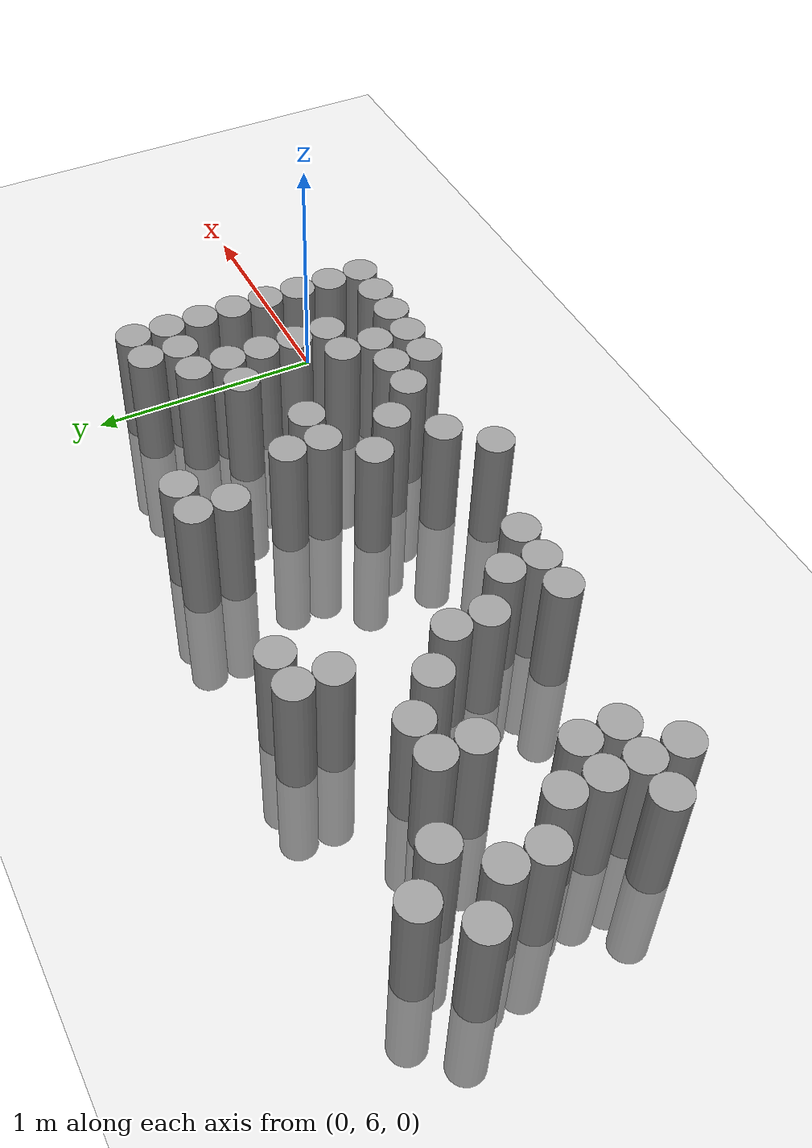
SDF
<sdf version="1.6">
 <world name="default">
  <model name="ground_plane">
   <static>1</static>
   <static>1</static>
   <link name="link">
    <collision name="collision">
     <geometry><plane><normal>0 0 1</normal><size>100 100</size></plane></geometry>
     <surface><friction><ode><mu>100</mu><mu2>50</mu2></ode></friction></surface>
    </collision>
    <visual name="visual">
     <cast_shadows>0</cast_shadows>
     <geometry><plane><normal>0 0 1</normal><size>100 100</size></plane></geometry>
     <material>
      <script><uri>file://media/materials/scripts/gazebo.material</uri><name>Gazebo/Grey</name></script>
     </material>
    </visual>
   </link>
  </model>
  <model name="unit_cylinder_166">
   <static>1</static>
   <pose>-3.075000 6.825000 0.000000 0.000000 0.000000 0.000000</pose>
   <link name="link">
    <inertial>
     <mass>1</mass>
     <inertia><ixx>0.145833</ixx><ixy>0</ixy><ixz>0</ixz><iyy>0.145833</iyy><iyz>0</iyz><izz>0.125</izz></inertia>
    </inertial>
    <collision name="collision">
     <geometry><cylinder><radius>0.075000</radius><length>1</length></cylinder></geometry>
    </collision>
    <visual name="visual">
     <geometry><cylinder><radius>0.075000</radius><length>1</length></cylinder></geometry>
     <material>
      <script><name>Gazebo/Grey</name><uri>file://media/materials/scripts/gazebo.material</uri></script>
     </material>
    </visual>
   </link>
  </model>
  <model name="unit_cylinder_168">
   <static>1</static>
   <pose>-2.925000 6.075000 0.000000 0.000000 0.000000 0.000000</pose>
   <link name="link">
    <inertial>
     <mass>1</mass>
     <inertia><ixx>0.145833</ixx><ixy>0</ixy><ixz>0</ixz><iyy>0.145833</iyy><iyz>0</iyz><izz>0.125</izz></inertia>
    </inertial>
    <collision name="collision">
     <geometry><cylinder><radius>0.075000</radius><length>1</length></cylinder></geometry>
    </collision>
    <visual name="visual">
     <geometry><cylinder><radius>0.075000</radius><length>1</length></cylinder></geometry>
     <material>
      <script><name>Gazebo/Grey</name><uri>file://media/materials/scripts/gazebo.material</uri></script>
     </material>
    </visual>
   </link>
  </model>
  <model name="unit_cylinder_169">
   <static>1</static>
   <pose>-2.925000 6.525000 0.000000 0.000000 0.000000 0.000000</pose>
   <link name="link">
    <inertial>
     <mass>1</mass>
     <inertia><ixx>0.145833</ixx><ixy>0</ixy><ixz>0</ixz><iyy>0.145833</iyy><iyz>0</iyz><izz>0.125</izz></inertia>
    </inertial>
    <collision name="collision">
     <geometry><cylinder><radius>0.075000</radius><length>1</length></cylinder></geometry>
    </collision>
    <visual name="visual">
     <geometry><cylinder><radius>0.075000</radius><length>1</length></cylinder></geometry>
     <material>
      <script><name>Gazebo/Grey</name><uri>file://media/materials/scripts/gazebo.material</uri></script>
     </material>
    </visual>
   </link>
  </model>
  <model name="unit_cylinder_170">
   <static>1</static>
   <pose>-2.925000 6.675000 0.000000 0.000000 0.000000 0.000000</pose>
   <link name="link">
    <inertial>
     <mass>1</mass>
     <inertia><ixx>0.145833</ixx><ixy>0</ixy><ixz>0</ixz><iyy>0.145833</iyy><iyz>0</iyz><izz>0.125</izz></inertia>
    </inertial>
    <collision name="collision">
     <geometry><cylinder><radius>0.075000</radius><length>1</length></cylinder></geometry>
    </collision>
    <visual name="visual">
     <geometry><cylinder><radius>0.075000</radius><length>1</length></cylinder></geometry>
     <material>
      <script><name>Gazebo/Grey</name><uri>file://media/materials/scripts/gazebo.material</uri></script>
     </material>
    </visual>
   </link>
  </model>
  <model name="unit_cylinder_171">
   <static>1</static>
   <pose>-2.925000 6.975000 0.000000 0.000000 0.000000 0.000000</pose>
   <link name="link">
    <inertial>
     <mass>1</mass>
     <inertia><ixx>0.145833</ixx><ixy>0</ixy><ixz>0</ixz><iyy>0.145833</iyy><iyz>0</iyz><izz>0.125</izz></inertia>
    </inertial>
    <collision name="collision">
     <geometry><cylinder><radius>0.075000</radius><length>1</length></cylinder></geometry>
    </collision>
    <visual name="visual">
     <geometry><cylinder><radius>0.075000</radius><length>1</length></cylinder></geometry>
     <material>
      <script><name>Gazebo/Grey</name><uri>file://media/materials/scripts/gazebo.material</uri></script>
     </material>
    </visual>
   </link>
  </model>
  <model name="unit_cylinder_172">
   <static>1</static>
   <pose>-2.775000 5.925000 0.000000 0.000000 0.000000 0.000000</pose>
   <link name="link">
    <inertial>
     <mass>1</mass>
     <inertia><ixx>0.145833</ixx><ixy>0</ixy><ixz>0</ixz><iyy>0.145833</iyy><iyz>0</iyz><izz>0.125</izz></inertia>
    </inertial>
    <collision name="collision">
     <geometry><cylinder><radius>0.075000</radius><length>1</length></cylinder></geometry>
    </collision>
    <visual name="visual">
     <geometry><cylinder><radius>0.075000</radius><length>1</length></cylinder></geometry>
     <material>
      <script><name>Gazebo/Grey</name><uri>file://media/materials/scripts/gazebo.material</uri></script>
     </material>
    </visual>
   </link>
  </model>
  <model name="unit_cylinder_173">
   <static>1</static>
   <pose>-2.775000 6.075000 0.000000 0.000000 0.000000 0.000000</pose>
   <link name="link">
    <inertial>
     <mass>1</mass>
     <inertia><ixx>0.145833</ixx><ixy>0</ixy><ixz>0</ixz><iyy>0.145833</iyy><iyz>0</iyz><izz>0.125</izz></inertia>
    </inertial>
    <collision name="collision">
     <geometry><cylinder><radius>0.075000</radius><length>1</length></cylinder></geometry>
    </collision>
    <visual name="visual">
     <geometry><cylinder><radius>0.075000</radius><length>1</length></cylinder></geometry>
     <material>
      <script><name>Gazebo/Grey</name><uri>file://media/materials/scripts/gazebo.material</uri></script>
     </material>
    </visual>
   </link>
  </model>
  <model name="unit_cylinder_174">
   <static>1</static>
   <pose>-2.775000 6.225000 0.000000 0.000000 0.000000 0.000000</pose>
   <link name="link">
    <inertial>
     <mass>1</mass>
     <inertia><ixx>0.145833</ixx><ixy>0</ixy><ixz>0</ixz><iyy>0.145833</iyy><iyz>0</iyz><izz>0.125</izz></inertia>
    </inertial>
    <collision name="collision">
     <geometry><cylinder><radius>0.075000</radius><length>1</length></cylinder></geometry>
    </collision>
    <visual name="visual">
     <geometry><cylinder><radius>0.075000</radius><length>1</length></cylinder></geometry>
     <material>
      <script><name>Gazebo/Grey</name><uri>file://media/materials/scripts/gazebo.material</uri></script>
     </material>
    </visual>
   </link>
  </model>
  <model name="unit_cylinder_175">
   <static>1</static>
   <pose>-2.775000 6.375000 0.000000 0.000000 0.000000 0.000000</pose>
   <link name="link">
    <inertial>
     <mass>1</mass>
     <inertia><ixx>0.145833</ixx><ixy>0</ixy><ixz>0</ixz><iyy>0.145833</iyy><iyz>0</iyz><izz>0.125</izz></inertia>
    </inertial>
    <collision name="collision">
     <geometry><cylinder><radius>0.075000</radius><length>1</length></cylinder></geometry>
    </collision>
    <visual name="visual">
     <geometry><cylinder><radius>0.075000</radius><length>1</length></cylinder></geometry>
     <material>
      <script><name>Gazebo/Grey</name><uri>file://media/materials/scripts/gazebo.material</uri></script>
     </material>
    </visual>
   </link>
  </model>
  <model name="unit_cylinder_176">
   <static>1</static>
   <pose>-2.775000 6.825000 0.000000 0.000000 0.000000 0.000000</pose>
   <link name="link">
    <inertial>
     <mass>1</mass>
     <inertia><ixx>0.145833</ixx><ixy>0</ixy><ixz>0</ixz><iyy>0.145833</iyy><iyz>0</iyz><izz>0.125</izz></inertia>
    </inertial>
    <collision name="collision">
     <geometry><cylinder><radius>0.075000</radius><length>1</length></cylinder></geometry>
    </collision>
    <visual name="visual">
     <geometry><cylinder><radius>0.075000</radius><length>1</length></cylinder></geometry>
     <material>
      <script><name>Gazebo/Grey</name><uri>file://media/materials/scripts/gazebo.material</uri></script>
     </material>
    </visual>
   </link>
  </model>
  <model name="unit_cylinder_177">
   <static>1</static>
   <pose>-2.625000 6.075000 0.000000 0.000000 0.000000 0.000000</pose>
   <link name="link">
    <inertial>
     <mass>1</mass>
     <inertia><ixx>0.145833</ixx><ixy>0</ixy><ixz>0</ixz><iyy>0.145833</iyy><iyz>0</iyz><izz>0.125</izz></inertia>
    </inertial>
    <collision name="collision">
     <geometry><cylinder><radius>0.075000</radius><length>1</length></cylinder></geometry>
    </collision>
    <visual name="visual">
     <geometry><cylinder><radius>0.075000</radius><length>1</length></cylinder></geometry>
     <material>
      <script><name>Gazebo/Grey</name><uri>file://media/materials/scripts/gazebo.material</uri></script>
     </material>
    </visual>
   </link>
  </model>
  <model name="unit_cylinder_178">
   <static>1</static>
   <pose>-2.625000 6.225000 0.000000 0.000000 0.000000 0.000000</pose>
   <link name="link">
    <inertial>
     <mass>1</mass>
     <inertia><ixx>0.145833</ixx><ixy>0</ixy><ixz>0</ixz><iyy>0.145833</iyy><iyz>0</iyz><izz>0.125</izz></inertia>
    </inertial>
    <collision name="collision">
     <geometry><cylinder><radius>0.075000</radius><length>1</length></cylinder></geometry>
    </collision>
    <visual name="visual">
     <geometry><cylinder><radius>0.075000</radius><length>1</length></cylinder></geometry>
     <material>
      <script><name>Gazebo/Grey</name><uri>file://media/materials/scripts/gazebo.material</uri></script>
     </material>
    </visual>
   </link>
  </model>
  <model name="unit_cylinder_179">
   <static>1</static>
   <pose>-2.475000 6.525000 0.000000 0.000000 0.000000 0.000000</pose>
   <link name="link">
    <inertial>
     <mass>1</mass>
     <inertia><ixx>0.145833</ixx><ixy>0</ixy><ixz>0</ixz><iyy>0.145833</iyy><iyz>0</iyz><izz>0.125</izz></inertia>
    </inertial>
    <collision name="collision">
     <geometry><cylinder><radius>0.075000</radius><length>1</length></cylinder></geometry>
    </collision>
    <visual name="visual">
     <geometry><cylinder><radius>0.075000</radius><length>1</length></cylinder></geometry>
     <material>
      <script><name>Gazebo/Grey</name><uri>file://media/materials/scripts/gazebo.material</uri></script>
     </material>
    </visual>
   </link>
  </model>
  <model name="unit_cylinder_180">
   <static>1</static>
   <pose>-2.475000 6.675000 0.000000 0.000000 0.000000 0.000000</pose>
   <link name="link">
    <inertial>
     <mass>1</mass>
     <inertia><ixx>0.145833</ixx><ixy>0</ixy><ixz>0</ixz><iyy>0.145833</iyy><iyz>0</iyz><izz>0.125</izz></inertia>
    </inertial>
    <collision name="collision">
     <geometry><cylinder><radius>0.075000</radius><length>1</length></cylinder></geometry>
    </collision>
    <visual name="visual">
     <geometry><cylinder><radius>0.075000</radius><length>1</length></cylinder></geometry>
     <material>
      <script><name>Gazebo/Grey</name><uri>file://media/materials/scripts/gazebo.material</uri></script>
     </material>
    </visual>
   </link>
  </model>
  <model name="unit_cylinder_182">
   <static>1</static>
   <pose>-2.325000 6.675000 0.000000 0.000000 0.000000 0.000000</pose>
   <link name="link">
    <inertial>
     <mass>1</mass>
     <inertia><ixx>0.145833</ixx><ixy>0</ixy><ixz>0</ixz><iyy>0.145833</iyy><iyz>0</iyz><izz>0.125</izz></inertia>
    </inertial>
    <collision name="collision">
     <geometry><cylinder><radius>0.075000</radius><length>1</length></cylinder></geometry>
    </collision>
    <visual name="visual">
     <geometry><cylinder><radius>0.075000</radius><length>1</length></cylinder></geometry>
     <material>
      <script><name>Gazebo/Grey</name><uri>file://media/materials/scripts/gazebo.material</uri></script>
     </material>
    </visual>
   </link>
  </model>
  <model name="unit_cylinder_185">
   <static>1</static>
   <pose>-2.175000 6.525000 0.000000 0.000000 0.000000 0.000000</pose>
   <link name="link">
    <inertial>
     <mass>1</mass>
     <inertia><ixx>0.145833</ixx><ixy>0</ixy><ixz>0</ixz><iyy>0.145833</iyy><iyz>0</iyz><izz>0.125</izz></inertia>
    </inertial>
    <collision name="collision">
     <geometry><cylinder><radius>0.075000</radius><length>1</length></cylinder></geometry>
    </collision>
    <visual name="visual">
     <geometry><cylinder><radius>0.075000</radius><length>1</length></cylinder></geometry>
     <material>
      <script><name>Gazebo/Grey</name><uri>file://media/materials/scripts/gazebo.material</uri></script>
     </material>
    </visual>
   </link>
  </model>
  <model name="unit_cylinder_189">
   <static>1</static>
   <pose>-2.025000 5.925000 0.000000 0.000000 0.000000 0.000000</pose>
   <link name="link">
    <inertial>
     <mass>1</mass>
     <inertia><ixx>0.145833</ixx><ixy>0</ixy><ixz>0</ixz><iyy>0.145833</iyy><iyz>0</iyz><izz>0.125</izz></inertia>
    </inertial>
    <collision name="collision">
     <geometry><cylinder><radius>0.075000</radius><length>1</length></cylinder></geometry>
    </collision>
    <visual name="visual">
     <geometry><cylinder><radius>0.075000</radius><length>1</length></cylinder></geometry>
     <material>
      <script><name>Gazebo/Grey</name><uri>file://media/materials/scripts/gazebo.material</uri></script>
     </material>
    </visual>
   </link>
  </model>
  <model name="unit_cylinder_190">
   <static>1</static>
   <pose>-2.025000 6.225000 0.000000 0.000000 0.000000 0.000000</pose>
   <link name="link">
    <inertial>
     <mass>1</mass>
     <inertia><ixx>0.145833</ixx><ixy>0</ixy><ixz>0</ixz><iyy>0.145833</iyy><iyz>0</iyz><izz>0.125</izz></inertia>
    </inertial>
    <collision name="collision">
     <geometry><cylinder><radius>0.075000</radius><length>1</length></cylinder></geometry>
    </collision>
    <visual name="visual">
     <geometry><cylinder><radius>0.075000</radius><length>1</length></cylinder></geometry>
     <material>
      <script><name>Gazebo/Grey</name><uri>file://media/materials/scripts/gazebo.material</uri></script>
     </material>
    </visual>
   </link>
  </model>
  <model name="unit_cylinder_191">
   <static>1</static>
   <pose>-2.025000 6.375000 0.000000 0.000000 0.000000 0.000000</pose>
   <link name="link">
    <inertial>
     <mass>1</mass>
     <inertia><ixx>0.145833</ixx><ixy>0</ixy><ixz>0</ixz><iyy>0.145833</iyy><iyz>0</iyz><izz>0.125</izz></inertia>
    </inertial>
    <collision name="collision">
     <geometry><cylinder><radius>0.075000</radius><length>1</length></cylinder></geometry>
    </collision>
    <visual name="visual">
     <geometry><cylinder><radius>0.075000</radius><length>1</length></cylinder></geometry>
     <material>
      <script><name>Gazebo/Grey</name><uri>file://media/materials/scripts/gazebo.material</uri></script>
     </material>
    </visual>
   </link>
  </model>
  <model name="unit_cylinder_192">
   <static>1</static>
   <pose>-2.025000 6.825000 0.000000 0.000000 0.000000 0.000000</pose>
   <link name="link">
    <inertial>
     <mass>1</mass>
     <inertia><ixx>0.145833</ixx><ixy>0</ixy><ixz>0</ixz><iyy>0.145833</iyy><iyz>0</iyz><izz>0.125</izz></inertia>
    </inertial>
    <collision name="collision">
     <geometry><cylinder><radius>0.075000</radius><length>1</length></cylinder></geometry>
    </collision>
    <visual name="visual">
     <geometry><cylinder><radius>0.075000</radius><length>1</length></cylinder></geometry>
     <material>
      <script><name>Gazebo/Grey</name><uri>file://media/materials/scripts/gazebo.material</uri></script>
     </material>
    </visual>
   </link>
  </model>
  <model name="unit_cylinder_193">
   <static>1</static>
   <pose>-2.025000 6.975000 0.000000 0.000000 0.000000 0.000000</pose>
   <link name="link">
    <inertial>
     <mass>1</mass>
     <inertia><ixx>0.145833</ixx><ixy>0</ixy><ixz>0</ixz><iyy>0.145833</iyy><iyz>0</iyz><izz>0.125</izz></inertia>
    </inertial>
    <collision name="collision">
     <geometry><cylinder><radius>0.075000</radius><length>1</length></cylinder></geometry>
    </collision>
    <visual name="visual">
     <geometry><cylinder><radius>0.075000</radius><length>1</length></cylinder></geometry>
     <material>
      <script><name>Gazebo/Grey</name><uri>file://media/materials/scripts/gazebo.material</uri></script>
     </material>
    </visual>
   </link>
  </model>
  <model name="unit_cylinder_197">
   <static>1</static>
   <pose>-1.875000 5.925000 0.000000 0.000000 0.000000 0.000000</pose>
   <link name="link">
    <inertial>
     <mass>1</mass>
     <inertia><ixx>0.145833</ixx><ixy>0</ixy><ixz>0</ixz><iyy>0.145833</iyy><iyz>0</iyz><izz>0.125</izz></inertia>
    </inertial>
    <collision name="collision">
     <geometry><cylinder><radius>0.075000</radius><length>1</length></cylinder></geometry>
    </collision>
    <visual name="visual">
     <geometry><cylinder><radius>0.075000</radius><length>1</length></cylinder></geometry>
     <material>
      <script><name>Gazebo/Grey</name><uri>file://media/materials/scripts/gazebo.material</uri></script>
     </material>
    </visual>
   </link>
  </model>
  <model name="unit_cylinder_198">
   <static>1</static>
   <pose>-1.875000 6.075000 0.000000 0.000000 0.000000 0.000000</pose>
   <link name="link">
    <inertial>
     <mass>1</mass>
     <inertia><ixx>0.145833</ixx><ixy>0</ixy><ixz>0</ixz><iyy>0.145833</iyy><iyz>0</iyz><izz>0.125</izz></inertia>
    </inertial>
    <collision name="collision">
     <geometry><cylinder><radius>0.075000</radius><length>1</length></cylinder></geometry>
    </collision>
    <visual name="visual">
     <geometry><cylinder><radius>0.075000</radius><length>1</length></cylinder></geometry>
     <material>
      <script><name>Gazebo/Grey</name><uri>file://media/materials/scripts/gazebo.material</uri></script>
     </material>
    </visual>
   </link>
  </model>
  <model name="unit_cylinder_199">
   <static>1</static>
   <pose>-1.875000 6.975000 0.000000 0.000000 0.000000 0.000000</pose>
   <link name="link">
    <inertial>
     <mass>1</mass>
     <inertia><ixx>0.145833</ixx><ixy>0</ixy><ixz>0</ixz><iyy>0.145833</iyy><iyz>0</iyz><izz>0.125</izz></inertia>
    </inertial>
    <collision name="collision">
     <geometry><cylinder><radius>0.075000</radius><length>1</length></cylinder></geometry>
    </collision>
    <visual name="visual">
     <geometry><cylinder><radius>0.075000</radius><length>1</length></cylinder></geometry>
     <material>
      <script><name>Gazebo/Grey</name><uri>file://media/materials/scripts/gazebo.material</uri></script>
     </material>
    </visual>
   </link>
  </model>
  <model name="unit_cylinder_203">
   <static>1</static>
   <pose>-1.725000 5.925000 0.000000 0.000000 0.000000 0.000000</pose>
   <link name="link">
    <inertial>
     <mass>1</mass>
     <inertia><ixx>0.145833</ixx><ixy>0</ixy><ixz>0</ixz><iyy>0.145833</iyy><iyz>0</iyz><izz>0.125</izz></inertia>
    </inertial>
    <collision name="collision">
     <geometry><cylinder><radius>0.075000</radius><length>1</length></cylinder></geometry>
    </collision>
    <visual name="visual">
     <geometry><cylinder><radius>0.075000</radius><length>1</length></cylinder></geometry>
     <material>
      <script><name>Gazebo/Grey</name><uri>file://media/materials/scripts/gazebo.material</uri></script>
     </material>
    </visual>
   </link>
  </model>
  <model name="unit_cylinder_213">
   <static>1</static>
   <pose>-1.275000 5.775000 0.000000 0.000000 0.000000 0.000000</pose>
   <link name="link">
    <inertial>
     <mass>1</mass>
     <inertia><ixx>0.145833</ixx><ixy>0</ixy><ixz>0</ixz><iyy>0.145833</iyy><iyz>0</iyz><izz>0.125</izz></inertia>
    </inertial>
    <collision name="collision">
     <geometry><cylinder><radius>0.075000</radius><length>1</length></cylinder></geometry>
    </collision>
    <visual name="visual">
     <geometry><cylinder><radius>0.075000</radius><length>1</length></cylinder></geometry>
     <material>
      <script><name>Gazebo/Grey</name><uri>file://media/materials/scripts/gazebo.material</uri></script>
     </material>
    </visual>
   </link>
  </model>
  <model name="unit_cylinder_214">
   <static>1</static>
   <pose>-1.125000 5.925000 0.000000 0.000000 0.000000 0.000000</pose>
   <link name="link">
    <inertial>
     <mass>1</mass>
     <inertia><ixx>0.145833</ixx><ixy>0</ixy><ixz>0</ixz><iyy>0.145833</iyy><iyz>0</iyz><izz>0.125</izz></inertia>
    </inertial>
    <collision name="collision">
     <geometry><cylinder><radius>0.075000</radius><length>1</length></cylinder></geometry>
    </collision>
    <visual name="visual">
     <geometry><cylinder><radius>0.075000</radius><length>1</length></cylinder></geometry>
     <material>
      <script><name>Gazebo/Grey</name><uri>file://media/materials/scripts/gazebo.material</uri></script>
     </material>
    </visual>
   </link>
  </model>
  <model name="unit_cylinder_215">
   <static>1</static>
   <pose>-1.125000 6.225000 0.000000 0.000000 0.000000 0.000000</pose>
   <link name="link">
    <inertial>
     <mass>1</mass>
     <inertia><ixx>0.145833</ixx><ixy>0</ixy><ixz>0</ixz><iyy>0.145833</iyy><iyz>0</iyz><izz>0.125</izz></inertia>
    </inertial>
    <collision name="collision">
     <geometry><cylinder><radius>0.075000</radius><length>1</length></cylinder></geometry>
    </collision>
    <visual name="visual">
     <geometry><cylinder><radius>0.075000</radius><length>1</length></cylinder></geometry>
     <material>
      <script><name>Gazebo/Grey</name><uri>file://media/materials/scripts/gazebo.material</uri></script>
     </material>
    </visual>
   </link>
  </model>
  <model name="unit_cylinder_216">
   <static>1</static>
   <pose>-1.125000 6.825000 0.000000 0.000000 0.000000 0.000000</pose>
   <link name="link">
    <inertial>
     <mass>1</mass>
     <inertia><ixx>0.145833</ixx><ixy>0</ixy><ixz>0</ixz><iyy>0.145833</iyy><iyz>0</iyz><izz>0.125</izz></inertia>
    </inertial>
    <collision name="collision">
     <geometry><cylinder><radius>0.075000</radius><length>1</length></cylinder></geometry>
    </collision>
    <visual name="visual">
     <geometry><cylinder><radius>0.075000</radius><length>1</length></cylinder></geometry>
     <material>
      <script><name>Gazebo/Grey</name><uri>file://media/materials/scripts/gazebo.material</uri></script>
     </material>
    </visual>
   </link>
  </model>
  <model name="unit_cylinder_217">
   <static>1</static>
   <pose>-1.125000 6.975000 0.000000 0.000000 0.000000 0.000000</pose>
   <link name="link">
    <inertial>
     <mass>1</mass>
     <inertia><ixx>0.145833</ixx><ixy>0</ixy><ixz>0</ixz><iyy>0.145833</iyy><iyz>0</iyz><izz>0.125</izz></inertia>
    </inertial>
    <collision name="collision">
     <geometry><cylinder><radius>0.075000</radius><length>1</length></cylinder></geometry>
    </collision>
    <visual name="visual">
     <geometry><cylinder><radius>0.075000</radius><length>1</length></cylinder></geometry>
     <material>
      <script><name>Gazebo/Grey</name><uri>file://media/materials/scripts/gazebo.material</uri></script>
     </material>
    </visual>
   </link>
  </model>
  <model name="unit_cylinder_218">
   <static>1</static>
   <pose>-0.975000 6.075000 0.000000 0.000000 0.000000 0.000000</pose>
   <link name="link">
    <inertial>
     <mass>1</mass>
     <inertia><ixx>0.145833</ixx><ixy>0</ixy><ixz>0</ixz><iyy>0.145833</iyy><iyz>0</iyz><izz>0.125</izz></inertia>
    </inertial>
    <collision name="collision">
     <geometry><cylinder><radius>0.075000</radius><length>1</length></cylinder></geometry>
    </collision>
    <visual name="visual">
     <geometry><cylinder><radius>0.075000</radius><length>1</length></cylinder></geometry>
     <material>
      <script><name>Gazebo/Grey</name><uri>file://media/materials/scripts/gazebo.material</uri></script>
     </material>
    </visual>
   </link>
  </model>
  <model name="unit_cylinder_219">
   <static>1</static>
   <pose>-0.975000 6.375000 0.000000 0.000000 0.000000 0.000000</pose>
   <link name="link">
    <inertial>
     <mass>1</mass>
     <inertia><ixx>0.145833</ixx><ixy>0</ixy><ixz>0</ixz><iyy>0.145833</iyy><iyz>0</iyz><izz>0.125</izz></inertia>
    </inertial>
    <collision name="collision">
     <geometry><cylinder><radius>0.075000</radius><length>1</length></cylinder></geometry>
    </collision>
    <visual name="visual">
     <geometry><cylinder><radius>0.075000</radius><length>1</length></cylinder></geometry>
     <material>
      <script><name>Gazebo/Grey</name><uri>file://media/materials/scripts/gazebo.material</uri></script>
     </material>
    </visual>
   </link>
  </model>
  <model name="unit_cylinder_220">
   <static>1</static>
   <pose>-0.975000 6.525000 0.000000 0.000000 0.000000 0.000000</pose>
   <link name="link">
    <inertial>
     <mass>1</mass>
     <inertia><ixx>0.145833</ixx><ixy>0</ixy><ixz>0</ixz><iyy>0.145833</iyy><iyz>0</iyz><izz>0.125</izz></inertia>
    </inertial>
    <collision name="collision">
     <geometry><cylinder><radius>0.075000</radius><length>1</length></cylinder></geometry>
    </collision>
    <visual name="visual">
     <geometry><cylinder><radius>0.075000</radius><length>1</length></cylinder></geometry>
     <material>
      <script><name>Gazebo/Grey</name><uri>file://media/materials/scripts/gazebo.material</uri></script>
     </material>
    </visual>
   </link>
  </model>
  <model name="unit_cylinder_221">
   <static>1</static>
   <pose>-0.975000 6.975000 0.000000 0.000000 0.000000 0.000000</pose>
   <link name="link">
    <inertial>
     <mass>1</mass>
     <inertia><ixx>0.145833</ixx><ixy>0</ixy><ixz>0</ixz><iyy>0.145833</iyy><iyz>0</iyz><izz>0.125</izz></inertia>
    </inertial>
    <collision name="collision">
     <geometry><cylinder><radius>0.075000</radius><length>1</length></cylinder></geometry>
    </collision>
    <visual name="visual">
     <geometry><cylinder><radius>0.075000</radius><length>1</length></cylinder></geometry>
     <material>
      <script><name>Gazebo/Grey</name><uri>file://media/materials/scripts/gazebo.material</uri></script>
     </material>
    </visual>
   </link>
  </model>
  <model name="unit_cylinder_224">
   <static>1</static>
   <pose>-0.825000 5.925000 0.000000 0.000000 0.000000 0.000000</pose>
   <link name="link">
    <inertial>
     <mass>1</mass>
     <inertia><ixx>0.145833</ixx><ixy>0</ixy><ixz>0</ixz><iyy>0.145833</iyy><iyz>0</iyz><izz>0.125</izz></inertia>
    </inertial>
    <collision name="collision">
     <geometry><cylinder><radius>0.075000</radius><length>1</length></cylinder></geometry>
    </collision>
    <visual name="visual">
     <geometry><cylinder><radius>0.075000</radius><length>1</length></cylinder></geometry>
     <material>
      <script><name>Gazebo/Grey</name><uri>file://media/materials/scripts/gazebo.material</uri></script>
     </material>
    </visual>
   </link>
  </model>
  <model name="unit_cylinder_225">
   <static>1</static>
   <pose>-0.825000 6.375000 0.000000 0.000000 0.000000 0.000000</pose>
   <link name="link">
    <inertial>
     <mass>1</mass>
     <inertia><ixx>0.145833</ixx><ixy>0</ixy><ixz>0</ixz><iyy>0.145833</iyy><iyz>0</iyz><izz>0.125</izz></inertia>
    </inertial>
    <collision name="collision">
     <geometry><cylinder><radius>0.075000</radius><length>1</length></cylinder></geometry>
    </collision>
    <visual name="visual">
     <geometry><cylinder><radius>0.075000</radius><length>1</length></cylinder></geometry>
     <material>
      <script><name>Gazebo/Grey</name><uri>file://media/materials/scripts/gazebo.material</uri></script>
     </material>
    </visual>
   </link>
  </model>
  <model name="unit_cylinder_227">
   <static>1</static>
   <pose>-0.675000 5.775000 0.000000 0.000000 0.000000 0.000000</pose>
   <link name="link">
    <inertial>
     <mass>1</mass>
     <inertia><ixx>0.145833</ixx><ixy>0</ixy><ixz>0</ixz><iyy>0.145833</iyy><iyz>0</iyz><izz>0.125</izz></inertia>
    </inertial>
    <collision name="collision">
     <geometry><cylinder><radius>0.075000</radius><length>1</length></cylinder></geometry>
    </collision>
    <visual name="visual">
     <geometry><cylinder><radius>0.075000</radius><length>1</length></cylinder></geometry>
     <material>
      <script><name>Gazebo/Grey</name><uri>file://media/materials/scripts/gazebo.material</uri></script>
     </material>
    </visual>
   </link>
  </model>
  <model name="unit_cylinder_228">
   <static>1</static>
   <pose>-0.675000 5.925000 0.000000 0.000000 0.000000 0.000000</pose>
   <link name="link">
    <inertial>
     <mass>1</mass>
     <inertia><ixx>0.145833</ixx><ixy>0</ixy><ixz>0</ixz><iyy>0.145833</iyy><iyz>0</iyz><izz>0.125</izz></inertia>
    </inertial>
    <collision name="collision">
     <geometry><cylinder><radius>0.075000</radius><length>1</length></cylinder></geometry>
    </collision>
    <visual name="visual">
     <geometry><cylinder><radius>0.075000</radius><length>1</length></cylinder></geometry>
     <material>
      <script><name>Gazebo/Grey</name><uri>file://media/materials/scripts/gazebo.material</uri></script>
     </material>
    </visual>
   </link>
  </model>
  <model name="unit_cylinder_231">
   <static>1</static>
   <pose>-0.525000 5.775000 0.000000 0.000000 0.000000 0.000000</pose>
   <link name="link">
    <inertial>
     <mass>1</mass>
     <inertia><ixx>0.145833</ixx><ixy>0</ixy><ixz>0</ixz><iyy>0.145833</iyy><iyz>0</iyz><izz>0.125</izz></inertia>
    </inertial>
    <collision name="collision">
     <geometry><cylinder><radius>0.075000</radius><length>1</length></cylinder></geometry>
    </collision>
    <visual name="visual">
     <geometry><cylinder><radius>0.075000</radius><length>1</length></cylinder></geometry>
     <material>
      <script><name>Gazebo/Grey</name><uri>file://media/materials/scripts/gazebo.material</uri></script>
     </material>
    </visual>
   </link>
  </model>
  <model name="unit_cylinder_232">
   <static>1</static>
   <pose>-0.525000 5.925000 0.000000 0.000000 0.000000 0.000000</pose>
   <link name="link">
    <inertial>
     <mass>1</mass>
     <inertia><ixx>0.145833</ixx><ixy>0</ixy><ixz>0</ixz><iyy>0.145833</iyy><iyz>0</iyz><izz>0.125</izz></inertia>
    </inertial>
    <collision name="collision">
     <geometry><cylinder><radius>0.075000</radius><length>1</length></cylinder></geometry>
    </collision>
    <visual name="visual">
     <geometry><cylinder><radius>0.075000</radius><length>1</length></cylinder></geometry>
     <material>
      <script><name>Gazebo/Grey</name><uri>file://media/materials/scripts/gazebo.material</uri></script>
     </material>
    </visual>
   </link>
  </model>
  <model name="unit_cylinder_233">
   <static>1</static>
   <pose>-0.525000 6.075000 0.000000 0.000000 0.000000 0.000000</pose>
   <link name="link">
    <inertial>
     <mass>1</mass>
     <inertia><ixx>0.145833</ixx><ixy>0</ixy><ixz>0</ixz><iyy>0.145833</iyy><iyz>0</iyz><izz>0.125</izz></inertia>
    </inertial>
    <collision name="collision">
     <geometry><cylinder><radius>0.075000</radius><length>1</length></cylinder></geometry>
    </collision>
    <visual name="visual">
     <geometry><cylinder><radius>0.075000</radius><length>1</length></cylinder></geometry>
     <material>
      <script><name>Gazebo/Grey</name><uri>file://media/materials/scripts/gazebo.material</uri></script>
     </material>
    </visual>
   </link>
  </model>
  <model name="unit_cylinder_234">
   <static>1</static>
   <pose>-0.525000 6.525000 0.000000 0.000000 0.000000 0.000000</pose>
   <link name="link">
    <inertial>
     <mass>1</mass>
     <inertia><ixx>0.145833</ixx><ixy>0</ixy><ixz>0</ixz><iyy>0.145833</iyy><iyz>0</iyz><izz>0.125</izz></inertia>
    </inertial>
    <collision name="collision">
     <geometry><cylinder><radius>0.075000</radius><length>1</length></cylinder></geometry>
    </collision>
    <visual name="visual">
     <geometry><cylinder><radius>0.075000</radius><length>1</length></cylinder></geometry>
     <material>
      <script><name>Gazebo/Grey</name><uri>file://media/materials/scripts/gazebo.material</uri></script>
     </material>
    </visual>
   </link>
  </model>
  <model name="unit_cylinder_241">
   <static>1</static>
   <pose>-0.375000 5.775000 0.000000 0.000000 0.000000 0.000000</pose>
   <link name="link">
    <inertial>
     <mass>1</mass>
     <inertia><ixx>0.145833</ixx><ixy>0</ixy><ixz>0</ixz><iyy>0.145833</iyy><iyz>0</iyz><izz>0.125</izz></inertia>
    </inertial>
    <collision name="collision">
     <geometry><cylinder><radius>0.075000</radius><length>1</length></cylinder></geometry>
    </collision>
    <visual name="visual">
     <geometry><cylinder><radius>0.075000</radius><length>1</length></cylinder></geometry>
     <material>
      <script><name>Gazebo/Grey</name><uri>file://media/materials/scripts/gazebo.material</uri></script>
     </material>
    </visual>
   </link>
  </model>
  <model name="unit_cylinder_242">
   <static>1</static>
   <pose>-0.375000 6.075000 0.000000 0.000000 0.000000 0.000000</pose>
   <link name="link">
    <inertial>
     <mass>1</mass>
     <inertia><ixx>0.145833</ixx><ixy>0</ixy><ixz>0</ixz><iyy>0.145833</iyy><iyz>0</iyz><izz>0.125</izz></inertia>
    </inertial>
    <collision name="collision">
     <geometry><cylinder><radius>0.075000</radius><length>1</length></cylinder></geometry>
    </collision>
    <visual name="visual">
     <geometry><cylinder><radius>0.075000</radius><length>1</length></cylinder></geometry>
     <material>
      <script><name>Gazebo/Grey</name><uri>file://media/materials/scripts/gazebo.material</uri></script>
     </material>
    </visual>
   </link>
  </model>
  <model name="unit_cylinder_243">
   <static>1</static>
   <pose>-0.375000 6.225000 0.000000 0.000000 0.000000 0.000000</pose>
   <link name="link">
    <inertial>
     <mass>1</mass>
     <inertia><ixx>0.145833</ixx><ixy>0</ixy><ixz>0</ixz><iyy>0.145833</iyy><iyz>0</iyz><izz>0.125</izz></inertia>
    </inertial>
    <collision name="collision">
     <geometry><cylinder><radius>0.075000</radius><length>1</length></cylinder></geometry>
    </collision>
    <visual name="visual">
     <geometry><cylinder><radius>0.075000</radius><length>1</length></cylinder></geometry>
     <material>
      <script><name>Gazebo/Grey</name><uri>file://media/materials/scripts/gazebo.material</uri></script>
     </material>
    </visual>
   </link>
  </model>
  <model name="unit_cylinder_244">
   <static>1</static>
   <pose>-0.375000 6.375000 0.000000 0.000000 0.000000 0.000000</pose>
   <link name="link">
    <inertial>
     <mass>1</mass>
     <inertia><ixx>0.145833</ixx><ixy>0</ixy><ixz>0</ixz><iyy>0.145833</iyy><iyz>0</iyz><izz>0.125</izz></inertia>
    </inertial>
    <collision name="collision">
     <geometry><cylinder><radius>0.075000</radius><length>1</length></cylinder></geometry>
    </collision>
    <visual name="visual">
     <geometry><cylinder><radius>0.075000</radius><length>1</length></cylinder></geometry>
     <material>
      <script><name>Gazebo/Grey</name><uri>file://media/materials/scripts/gazebo.material</uri></script>
     </material>
    </visual>
   </link>
  </model>
  <model name="unit_cylinder_245">
   <static>1</static>
   <pose>-0.375000 6.525000 0.000000 0.000000 0.000000 0.000000</pose>
   <link name="link">
    <inertial>
     <mass>1</mass>
     <inertia><ixx>0.145833</ixx><ixy>0</ixy><ixz>0</ixz><iyy>0.145833</iyy><iyz>0</iyz><izz>0.125</izz></inertia>
    </inertial>
    <collision name="collision">
     <geometry><cylinder><radius>0.075000</radius><length>1</length></cylinder></geometry>
    </collision>
    <visual name="visual">
     <geometry><cylinder><radius>0.075000</radius><length>1</length></cylinder></geometry>
     <material>
      <script><name>Gazebo/Grey</name><uri>file://media/materials/scripts/gazebo.material</uri></script>
     </material>
    </visual>
   </link>
  </model>
  <model name="unit_cylinder_246">
   <static>1</static>
   <pose>-0.375000 6.675000 0.000000 0.000000 0.000000 0.000000</pose>
   <link name="link">
    <inertial>
     <mass>1</mass>
     <inertia><ixx>0.145833</ixx><ixy>0</ixy><ixz>0</ixz><iyy>0.145833</iyy><iyz>0</iyz><izz>0.125</izz></inertia>
    </inertial>
    <collision name="collision">
     <geometry><cylinder><radius>0.075000</radius><length>1</length></cylinder></geometry>
    </collision>
    <visual name="visual">
     <geometry><cylinder><radius>0.075000</radius><length>1</length></cylinder></geometry>
     <material>
      <script><name>Gazebo/Grey</name><uri>file://media/materials/scripts/gazebo.material</uri></script>
     </material>
    </visual>
   </link>
  </model>
  <model name="unit_cylinder_255">
   <static>1</static>
   <pose>-0.225000 5.775000 0.000000 0.000000 0.000000 0.000000</pose>
   <link name="link">
    <inertial>
     <mass>1</mass>
     <inertia><ixx>0.145833</ixx><ixy>0</ixy><ixz>0</ixz><iyy>0.145833</iyy><iyz>0</iyz><izz>0.125</izz></inertia>
    </inertial>
    <collision name="collision">
     <geometry><cylinder><radius>0.075000</radius><length>1</length></cylinder></geometry>
    </collision>
    <visual name="visual">
     <geometry><cylinder><radius>0.075000</radius><length>1</length></cylinder></geometry>
     <material>
      <script><name>Gazebo/Grey</name><uri>file://media/materials/scripts/gazebo.material</uri></script>
     </material>
    </visual>
   </link>
  </model>
  <model name="unit_cylinder_256">
   <static>1</static>
   <pose>-0.225000 6.675000 0.000000 0.000000 0.000000 0.000000</pose>
   <link name="link">
    <inertial>
     <mass>1</mass>
     <inertia><ixx>0.145833</ixx><ixy>0</ixy><ixz>0</ixz><iyy>0.145833</iyy><iyz>0</iyz><izz>0.125</izz></inertia>
    </inertial>
    <collision name="collision">
     <geometry><cylinder><radius>0.075000</radius><length>1</length></cylinder></geometry>
    </collision>
    <visual name="visual">
     <geometry><cylinder><radius>0.075000</radius><length>1</length></cylinder></geometry>
     <material>
      <script><name>Gazebo/Grey</name><uri>file://media/materials/scripts/gazebo.material</uri></script>
     </material>
    </visual>
   </link>
  </model>
  <model name="unit_cylinder_257">
   <static>1</static>
   <pose>-0.225000 6.825000 0.000000 0.000000 0.000000 0.000000</pose>
   <link name="link">
    <inertial>
     <mass>1</mass>
     <inertia><ixx>0.145833</ixx><ixy>0</ixy><ixz>0</ixz><iyy>0.145833</iyy><iyz>0</iyz><izz>0.125</izz></inertia>
    </inertial>
    <collision name="collision">
     <geometry><cylinder><radius>0.075000</radius><length>1</length></cylinder></geometry>
    </collision>
    <visual name="visual">
     <geometry><cylinder><radius>0.075000</radius><length>1</length></cylinder></geometry>
     <material>
      <script><name>Gazebo/Grey</name><uri>file://media/materials/scripts/gazebo.material</uri></script>
     </material>
    </visual>
   </link>
  </model>
  <model name="unit_cylinder_271">
   <static>1</static>
   <pose>-0.075000 5.775000 0.000000 0.000000 0.000000 0.000000</pose>
   <link name="link">
    <inertial>
     <mass>1</mass>
     <inertia><ixx>0.145833</ixx><ixy>0</ixy><ixz>0</ixz><iyy>0.145833</iyy><iyz>0</iyz><izz>0.125</izz></inertia>
    </inertial>
    <collision name="collision">
     <geometry><cylinder><radius>0.075000</radius><length>1</length></cylinder></geometry>
    </collision>
    <visual name="visual">
     <geometry><cylinder><radius>0.075000</radius><length>1</length></cylinder></geometry>
     <material>
      <script><name>Gazebo/Grey</name><uri>file://media/materials/scripts/gazebo.material</uri></script>
     </material>
    </visual>
   </link>
  </model>
  <model name="unit_cylinder_272">
   <static>1</static>
   <pose>-0.075000 5.925000 0.000000 0.000000 0.000000 0.000000</pose>
   <link name="link">
    <inertial>
     <mass>1</mass>
     <inertia><ixx>0.145833</ixx><ixy>0</ixy><ixz>0</ixz><iyy>0.145833</iyy><iyz>0</iyz><izz>0.125</izz></inertia>
    </inertial>
    <collision name="collision">
     <geometry><cylinder><radius>0.075000</radius><length>1</length></cylinder></geometry>
    </collision>
    <visual name="visual">
     <geometry><cylinder><radius>0.075000</radius><length>1</length></cylinder></geometry>
     <material>
      <script><name>Gazebo/Grey</name><uri>file://media/materials/scripts/gazebo.material</uri></script>
     </material>
    </visual>
   </link>
  </model>
  <model name="unit_cylinder_273">
   <static>1</static>
   <pose>-0.075000 6.075000 0.000000 0.000000 0.000000 0.000000</pose>
   <link name="link">
    <inertial>
     <mass>1</mass>
     <inertia><ixx>0.145833</ixx><ixy>0</ixy><ixz>0</ixz><iyy>0.145833</iyy><iyz>0</iyz><izz>0.125</izz></inertia>
    </inertial>
    <collision name="collision">
     <geometry><cylinder><radius>0.075000</radius><length>1</length></cylinder></geometry>
    </collision>
    <visual name="visual">
     <geometry><cylinder><radius>0.075000</radius><length>1</length></cylinder></geometry>
     <material>
      <script><name>Gazebo/Grey</name><uri>file://media/materials/scripts/gazebo.material</uri></script>
     </material>
    </visual>
   </link>
  </model>
  <model name="unit_cylinder_274">
   <static>1</static>
   <pose>-0.075000 6.225000 0.000000 0.000000 0.000000 0.000000</pose>
   <link name="link">
    <inertial>
     <mass>1</mass>
     <inertia><ixx>0.145833</ixx><ixy>0</ixy><ixz>0</ixz><iyy>0.145833</iyy><iyz>0</iyz><izz>0.125</izz></inertia>
    </inertial>
    <collision name="collision">
     <geometry><cylinder><radius>0.075000</radius><length>1</length></cylinder></geometry>
    </collision>
    <visual name="visual">
     <geometry><cylinder><radius>0.075000</radius><length>1</length></cylinder></geometry>
     <material>
      <script><name>Gazebo/Grey</name><uri>file://media/materials/scripts/gazebo.material</uri></script>
     </material>
    </visual>
   </link>
  </model>
  <model name="unit_cylinder_275">
   <static>1</static>
   <pose>-0.075000 6.375000 0.000000 0.000000 0.000000 0.000000</pose>
   <link name="link">
    <inertial>
     <mass>1</mass>
     <inertia><ixx>0.145833</ixx><ixy>0</ixy><ixz>0</ixz><iyy>0.145833</iyy><iyz>0</iyz><izz>0.125</izz></inertia>
    </inertial>
    <collision name="collision">
     <geometry><cylinder><radius>0.075000</radius><length>1</length></cylinder></geometry>
    </collision>
    <visual name="visual">
     <geometry><cylinder><radius>0.075000</radius><length>1</length></cylinder></geometry>
     <material>
      <script><name>Gazebo/Grey</name><uri>file://media/materials/scripts/gazebo.material</uri></script>
     </material>
    </visual>
   </link>
  </model>
  <model name="unit_cylinder_276">
   <static>1</static>
   <pose>-0.075000 6.525000 0.000000 0.000000 0.000000 0.000000</pose>
   <link name="link">
    <inertial>
     <mass>1</mass>
     <inertia><ixx>0.145833</ixx><ixy>0</ixy><ixz>0</ixz><iyy>0.145833</iyy><iyz>0</iyz><izz>0.125</izz></inertia>
    </inertial>
    <collision name="collision">
     <geometry><cylinder><radius>0.075000</radius><length>1</length></cylinder></geometry>
    </collision>
    <visual name="visual">
     <geometry><cylinder><radius>0.075000</radius><length>1</length></cylinder></geometry>
     <material>
      <script><name>Gazebo/Grey</name><uri>file://media/materials/scripts/gazebo.material</uri></script>
     </material>
    </visual>
   </link>
  </model>
  <model name="unit_cylinder_277">
   <static>1</static>
   <pose>-0.075000 6.675000 0.000000 0.000000 0.000000 0.000000</pose>
   <link name="link">
    <inertial>
     <mass>1</mass>
     <inertia><ixx>0.145833</ixx><ixy>0</ixy><ixz>0</ixz><iyy>0.145833</iyy><iyz>0</iyz><izz>0.125</izz></inertia>
    </inertial>
    <collision name="collision">
     <geometry><cylinder><radius>0.075000</radius><length>1</length></cylinder></geometry>
    </collision>
    <visual name="visual">
     <geometry><cylinder><radius>0.075000</radius><length>1</length></cylinder></geometry>
     <material>
      <script><name>Gazebo/Grey</name><uri>file://media/materials/scripts/gazebo.material</uri></script>
     </material>
    </visual>
   </link>
  </model>
  <model name="unit_cylinder_278">
   <static>1</static>
   <pose>-0.075000 6.825000 0.000000 0.000000 0.000000 0.000000</pose>
   <link name="link">
    <inertial>
     <mass>1</mass>
     <inertia><ixx>0.145833</ixx><ixy>0</ixy><ixz>0</ixz><iyy>0.145833</iyy><iyz>0</iyz><izz>0.125</izz></inertia>
    </inertial>
    <collision name="collision">
     <geometry><cylinder><radius>0.075000</radius><length>1</length></cylinder></geometry>
    </collision>
    <visual name="visual">
     <geometry><cylinder><radius>0.075000</radius><length>1</length></cylinder></geometry>
     <material>
      <script><name>Gazebo/Grey</name><uri>file://media/materials/scripts/gazebo.material</uri></script>
     </material>
    </visual>
   </link>
  </model>
 </world>
</sdf>
